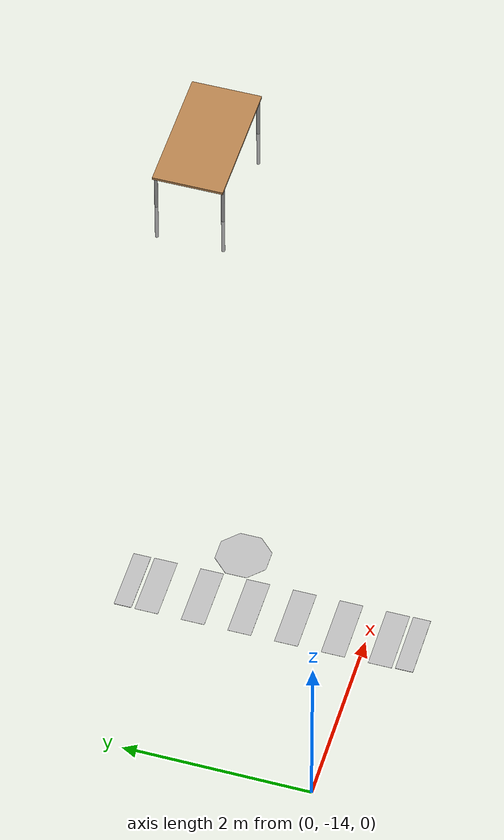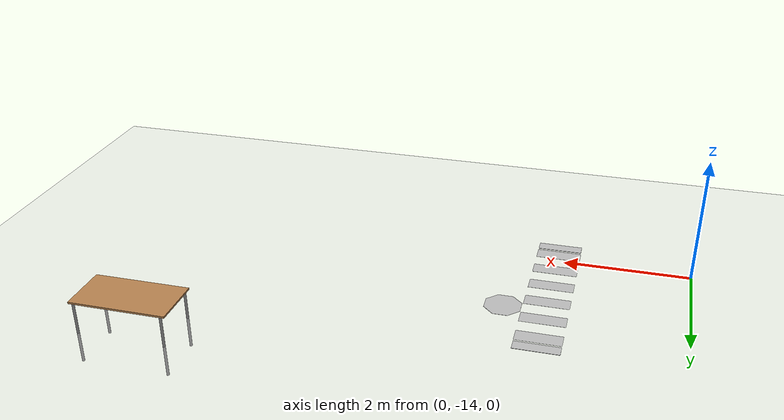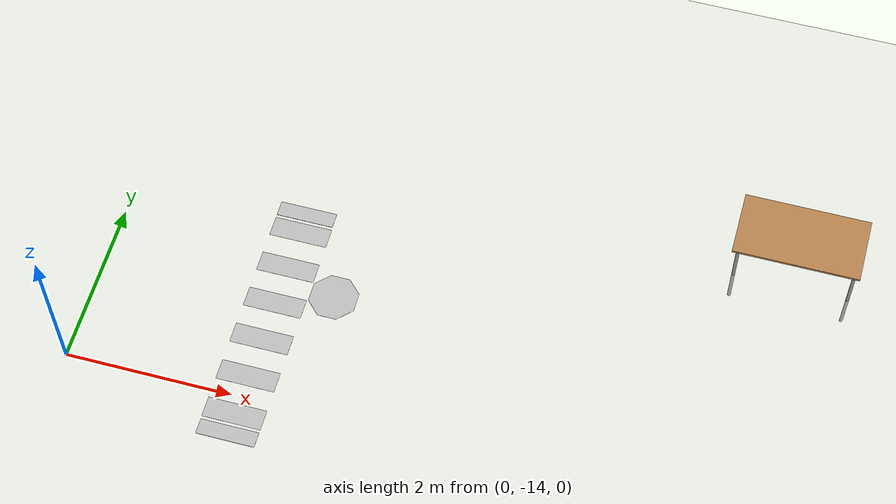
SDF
<sdf version="1.6">
 <world name="default">
  <model name="ground_plane">
   <static>1</static>
   <link name="link">
    <collision name="collision">
     <geometry><plane><normal>0 0 1</normal><size>100 100</size></plane></geometry>
     <surface><friction><ode><mu>100</mu><mu2>50</mu2></ode></friction></surface>
    </collision>
    <visual name="visual">
     <cast_shadows>0</cast_shadows>
     <geometry><plane><normal>0 0 1</normal><size>100 100</size></plane></geometry>
     <material>
      <script><uri>file://media/materials/scripts/gazebo.material</uri><name>Gazebo/Grey</name></script>
     </material>
    </visual>
   </link>
  </model>
  <model name="crosswalk_11">
   <link name="link_0">
    <inertial>
     <mass>1</mass>
     <inertia>
      <ixx>0.166667</ixx>
      <ixy>0</ixy>
      <ixz>0</ixz>
      <iyy>0.166667</iyy>
      <iyz>0</iyz>
      <izz>0.166667</izz>
     </inertia>
    </inertial>
    <visual name="visual">
     <pose>0.25 0 0 0 -0 0</pose>
     <geometry><box><size>0.25 0.7 0.001</size></box></geometry>
     <material><lighting>1</lighting></material>
    </visual>
    <visual name="ModelPreview_0::link_0::visual_1">
     <pose>0.75 0 0 0 -0 0</pose>
     <geometry><box><size>0.25 0.7 0.001</size></box></geometry>
     <material><lighting>1</lighting></material>
    </visual>
    <visual name="ModelPreview_0::link_0::visual_2">
     <pose>1.25 0 0 0 -0 0</pose>
     <geometry><box><size>0.25 0.7 0.001</size></box></geometry>
     <material><lighting>1</lighting></material>
    </visual>
    <visual name="ModelPreview_0::link_0::visual_3">
     <pose>-0.25 0 0 0 -0 0</pose>
     <geometry><box><size>0.25 0.7 0.001</size></box></geometry>
     <material><lighting>1</lighting></material>
    </visual>
    <visual name="ModelPreview_0::link_0::visual_4">
     <pose>-0.75 0 0 0 -0 0</pose>
     <geometry><box><size>0.25 0.7 0.001</size></box></geometry>
     <material><lighting>1</lighting></material>
    </visual>
    <visual name="ModelPreview_0::link_0::visual_5">
     <pose>-1.25 0 0 0 -0 0</pose>
     <geometry><box><size>0.25 0.7 0.001</size></box></geometry>
     <material><lighting>1</lighting></material>
    </visual>
    <visual name="ModelPreview_0::link_0::visual_6">
     <pose>-1.6 0.35 0 -1.5708 -0 -1.5708</pose>
     <geometry>
      <mesh><uri>model://crosswalk/model/Warning+sign+confined+space/model.dae</uri><scale>2.35 2 0.9</scale></mesh>
     </geometry>
    </visual>
    <visual name="ModelPreview_0::link_0::visual_7">
     <pose>1.6 -0.35 0 -1.5708 0 1.5708</pose>
     <geometry>
      <mesh><uri>model://crosswalk/model/Warning+sign+confined+space/model.dae</uri><scale>2.35 2 0.9</scale></mesh>
     </geometry>
     <material><lighting>1</lighting></material>
    </visual>
   </link>
   <static>1</static>
   <pose>2.10517 -12.9687 0 0 -0 1.5708</pose>
  </model>
  <model name="stopSign_6">
   <link name="link_0">
    <inertial>
     <mass>1</mass>
     <inertia><ixx>0.145833</ixx><ixy>0</ixy><ixz>0</ixz><iyy>0.145833</iyy><iyz>0</iyz><izz>0.125</izz></inertia>
    </inertial>
    <visual name="visual">
     <geometry><mesh><uri>model://stopSign/model/model.dae</uri><scale>1 1 0.1</scale></mesh></geometry>
     <material><lighting>1</lighting></material>
    </visual>
   </link>
   <static>1</static>
   <pose>3.02385 -12.7469 0 0 -0 1.5708</pose>
  </model>
  <model name="table_5">
   <static>1</static>
   <link name="link">
    <collision name="surface">
     <pose>0 0 1 0 -0 0</pose>
     <geometry><box><size>1.5 0.8 0.03</size></box></geometry>
     <surface><friction><ode><mu>0.6</mu><mu2>0.6</mu2></ode></friction></surface>
    </collision>
    <visual name="visual1">
     <pose>0 0 1 0 -0 0</pose>
     <geometry><box><size>1.5 0.8 0.03</size></box></geometry>
     <material>
      <script><uri>file://media/materials/scripts/gazebo.material</uri><name>Gazebo/Wood</name></script>
     </material>
    </visual>
    <collision name="front_left_leg">
     <pose>0.68 0.38 0.5 0 -0 0</pose>
     <geometry><cylinder><radius>0.02</radius><length>1</length></cylinder></geometry>
    </collision>
    <visual name="front_left_leg">
     <pose>0.68 0.38 0.5 0 -0 0</pose>
     <geometry><cylinder><radius>0.02</radius><length>1</length></cylinder></geometry>
     <material>
      <script><uri>file://media/materials/scripts/gazebo.material</uri><name>Gazebo/Grey</name></script>
     </material>
    </visual>
    <collision name="front_right_leg">
     <pose>0.68 -0.38 0.5 0 -0 0</pose>
     <geometry><cylinder><radius>0.02</radius><length>1</length></cylinder></geometry>
    </collision>
    <visual name="front_right_leg">
     <pose>0.68 -0.38 0.5 0 -0 0</pose>
     <geometry><cylinder><radius>0.02</radius><length>1</length></cylinder></geometry>
     <material>
      <script><uri>file://media/materials/scripts/gazebo.material</uri><name>Gazebo/Grey</name></script>
     </material>
    </visual>
    <collision name="back_right_leg">
     <pose>-0.68 -0.38 0.5 0 -0 0</pose>
     <geometry><cylinder><radius>0.02</radius><length>1</length></cylinder></geometry>
    </collision>
    <visual name="back_right_leg">
     <pose>-0.68 -0.38 0.5 0 -0 0</pose>
     <geometry><cylinder><radius>0.02</radius><length>1</length></cylinder></geometry>
     <material>
      <script><uri>file://media/materials/scripts/gazebo.material</uri><name>Gazebo/Grey</name></script>
     </material>
    </visual>
    <collision name="back_left_leg">
     <pose>-0.68 0.38 0.5 0 -0 0</pose>
     <geometry><cylinder><radius>0.02</radius><length>1</length></cylinder></geometry>
    </collision>
    <visual name="back_left_leg">
     <pose>-0.68 0.38 0.5 0 -0 0</pose>
     <geometry><cylinder><radius>0.02</radius><length>1</length></cylinder></geometry>
     <material>
      <script><uri>file://media/materials/scripts/gazebo.material</uri><name>Gazebo/Grey</name></script>
     </material>
    </visual>
   </link>
   <pose>7.87455 -10.54 -0.5 0 -0 0</pose>
  </model>
 </world>
</sdf>
